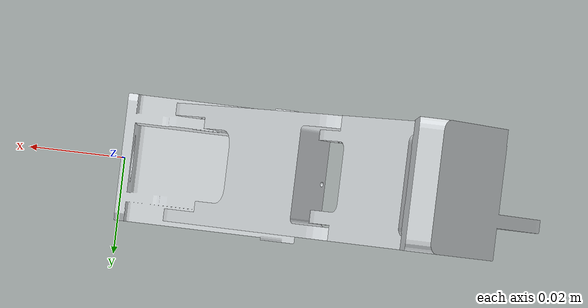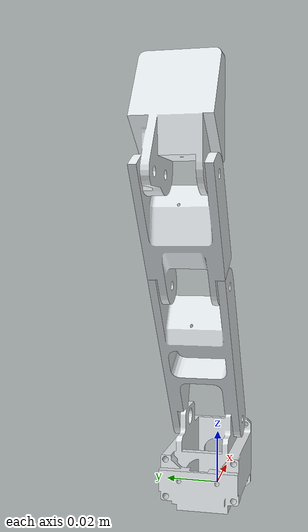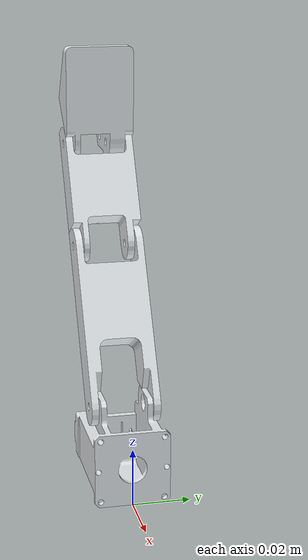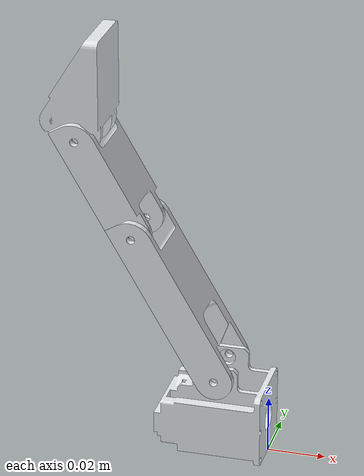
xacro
<?xml version="1.0" encoding="utf-8"?>
<robot name="fingertest" xmlns:xacro="http://ros.org/wiki/xacro">

  <include filename="$(find fingertest)/urdf/fingertest.gazebo"/>

  <link
    name="base_link">
    <inertial>
      <origin
        xyz="-0.01 0.00 0.04"
        rpy="0 0 0" />
      <mass
        value="0.027" />
      <inertia
        ixx="0"
        ixy="0"
        ixz="0"
        iyy="0"
        iyz="0"
        izz="20" />
    </inertial>
    <visual>
      <origin
        xyz="0 0 0"
        rpy="0 0 0" />
      <geometry>
        <mesh
          filename="package://fingertest/meshes/base_link.STL" />
      </geometry>
      <material
        name="">
        <color
          rgba="0.898039215686275 0.917647058823529 0.929411764705882 1" />
      </material>
    </visual>
    <collision>
      <origin
        xyz="0 0 0"
        rpy="0 0 0" />
      <geometry>
        <mesh
          filename="package://fingertest/meshes/base_link.STL" />
      </geometry>
    </collision>
  </link>
  <link
    name="Link_1">
    <inertial>
      <origin
        xyz="0 -0.01 0.02"
        rpy="0 0 0" />
      <mass
        value="0.02" />
      <inertia
        ixx="0"
        ixy="0"
        ixz="0"
        iyy="0"
        iyz="0"
        izz="0" />
    </inertial>
    <visual>
      <origin
        xyz="0 0 0"
        rpy="0 0 0" />
      <geometry>
        <mesh
          filename="package://fingertest/meshes/Link_1.STL" />
      </geometry>
      <material
        name="">
        <color
          rgba="0.898039215686275 0.917647058823529 0.929411764705882 1" />
      </material>
    </visual>
    <collision>
      <origin
        xyz="0 0 0"
        rpy="0 0 0" />
      <geometry>
        <mesh
          filename="package://fingertest/meshes/Link_1.STL" />
      </geometry>
    </collision>
  </link>

  <link name="world"/>
  <joint name="fixed456" type="fixed">
    <origin
      xyz="0 0 0"
      rpy="0 0 0" />
    <parent
      link="world" />
    <child
      link="base_link" />
    <axis
      xyz="0 0 0" />
  </joint>

  <joint
    name="Joint1"
    type="continuous">
    <origin
      xyz="-0.0165 0 0.0301"
      rpy="0 -0.5235 0" />
    <parent
      link="base_link" />
    <child
      link="Link_1" />
    <axis
      xyz="0 -1 0" />
  </joint>
  <link
    name="Link_2">
    <inertial>
      <origin
        xyz="0 -0.01 0.01"
        rpy="0 0 0" />
      <mass
        value="0.0197910341256244" />
      <inertia
        ixx="0"
        ixy="0"
        ixz="0"
        iyy="0"
        iyz="0"
        izz="0" />
    </inertial>
    <visual>
      <origin
        xyz="0 0 0"
        rpy="0 0 0" />
      <geometry>
        <mesh
          filename="package://fingertest/meshes/Link_2.STL" />
      </geometry>
      <material
        name="">
        <color
          rgba="0.898039215686275 0.917647058823529 0.929411764705882 1" />
      </material>
    </visual>
    <collision>
      <origin
        xyz="0 0 0"
        rpy="0 0 0" />
      <geometry>
        <mesh
          filename="package://fingertest/meshes/Link_2.STL" />
      </geometry>
    </collision>
  </link>
  <joint
    name="Joint2"
    type="continuous">
    <origin
      xyz="0 0 0.05715"
      rpy="0 0 0" />
    <parent
      link="Link_1" />
    <child
      link="Link_2" />
    <axis
      xyz="0 -1 0" />
  </joint>
  <link
    name="Link_3">
    <inertial>
      <origin
        xyz="-0.02 0.01 0.00"
        rpy="0 0 0" />
      <mass
        value="0.027" />
      <inertia
        ixx="0"
        ixy="0"
        ixz="0"
        iyy="0"
        iyz="0"
        izz="0" />
    </inertial>
    <visual>
      <origin
        xyz="0 0 0"
        rpy="0 0 0" />
      <geometry>
        <mesh
          filename="package://fingertest/meshes/Link_3.STL" />
      </geometry>
      <material
        name="">
        <color
          rgba="0.898039215686275 0.917647058823529 0.929411764705882 1" />
      </material>
    </visual>
    <collision>
      <origin
        xyz="0 0 0"
        rpy="0 0 0" />
      <geometry>
        <mesh
          filename="package://fingertest/meshes/Link_3.STL" />
      </geometry>
    </collision>
  </link>
  <joint
    name="Joint3"
    type="continuous">
    <origin
      xyz="0 0 0.0381"
      rpy="0 0.5235 0" />
    <parent
      link="Link_2" />
    <child
      link="Link_3" />
    <axis
      xyz="0 -1 0" />
  </joint>
  <transmission name="tran1">
    <type>transmission_interface/SimpleTransmission</type>
    <joint name="Joint1">
      <hardwareInterface>hardware_interface/EffortJointInterface</hardwareInterface>
    </joint>
    <actuator name="motor1">
      <hardwareInterface>hardware_interface/EffortJointInterface</hardwareInterface>
      <mechanicalReduction>1</mechanicalReduction>
    </actuator>
  </transmission>
    <transmission name="tran2">
    <type>transmission_interface/SimpleTransmission</type>
    <joint name="Joint2">
      <hardwareInterface>hardware_interface/EffortJointInterface</hardwareInterface>
    </joint>
    <actuator name="motor2">
      <hardwareInterface>hardware_interface/EffortJointInterface</hardwareInterface>
      <mechanicalReduction>1</mechanicalReduction>
    </actuator>
  </transmission>
    <transmission name="tran3">
    <type>transmission_interface/SimpleTransmission</type>
    <joint name="Joint3">
      <hardwareInterface>hardware_interface/EffortJointInterface</hardwareInterface>
    </joint>
    <actuator name="motor3">
      <hardwareInterface>hardware_interface/EffortJointInterface</hardwareInterface>
      <mechanicalReduction>1</mechanicalReduction>
    </actuator>
  </transmission>
</robot>
